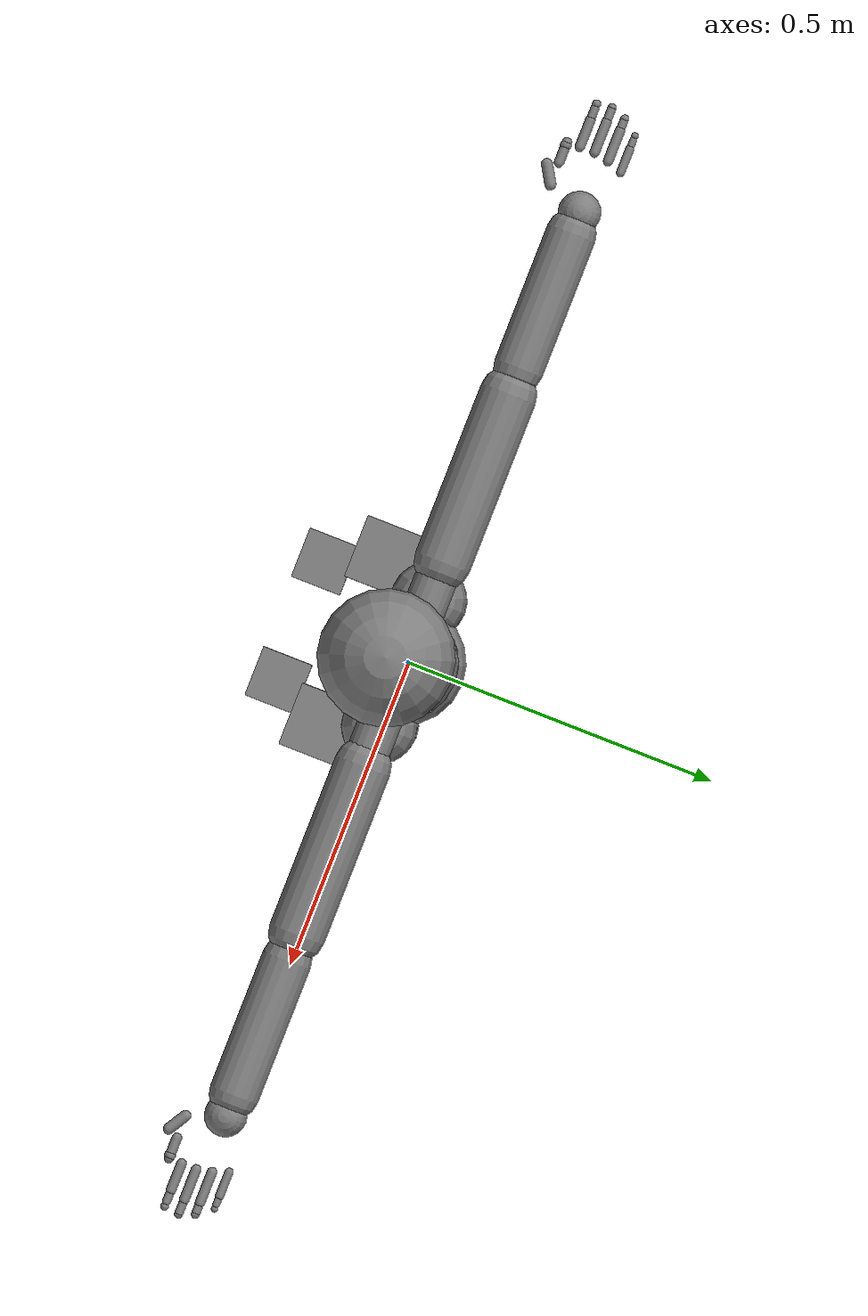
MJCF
<mujoco model="movinman">
  <compiler angle="radian"/>

  <default>
    <motor ctrlrange="-1 1" ctrllimited="true"/>
    <default class="body">
      <geom condim="1" friction="1.0 0.05 0.05" solimp=".9 .99 .003" solref=".015 1"/>
      <joint limited="true" solimplimit="0 .99 .01" armature=".01"/>
    </default>
    <default class="hand">
      <geom condim="1" friction="1.0 0.05 0.05" solimp=".9 .99 .003" solref=".015 1"/>
      <joint limited="true" solimplimit="0 .99 .01" armature=".005"/>
    </default>
  </default>

  <worldbody>
    <body name="Hips" pos="0 0 0.8698" childclass="body">
      <freejoint name="root"/>
      <geom name="Hips" type="sphere" size=".09" density="1000"/>

      <!-- Spine chain -->
      <body name="Spine" pos="0 0 0.0803">
        <joint name="Spine_x" type="hinge" axis="1 0 0" range="-3.14159 3.14159"/>
        <joint name="Spine_y" type="hinge" axis="0 1 0" range="-3.14159 3.14159"/>
        <joint name="Spine_z" type="hinge" axis="0 0 1" range="-3.14159 3.14159"/>
        <geom name="Spine" type="capsule" fromto="0 0 0 0 0 0.12" size=".07" density="1000"/>

        <body name="Spine1" pos="0 0 0.2169">
          <joint name="Spine1_x" type="hinge" axis="1 0 0" range="-3.14159 3.14159"/>
          <joint name="Spine1_y" type="hinge" axis="0 1 0" range="-3.14159 3.14159"/>
          <joint name="Spine1_z" type="hinge" axis="0 0 1" range="-3.14159 3.14159"/>
          <geom name="Spine1" type="capsule" fromto="0 0 0 0 0 0.13" size=".08" density="1000"/>

          <!-- Neck/Head -->
          <body name="Neck" pos="0 0 0.2365">
            <joint name="Neck_x" type="hinge" axis="1 0 0" range="-3.14159 3.14159"/>
            <joint name="Neck_y" type="hinge" axis="0 1 0" range="-3.14159 3.14159"/>
            <joint name="Neck_z" type="hinge" axis="0 0 1" range="-3.14159 3.14159"/>
            <geom name="Neck" type="capsule" fromto="0 0 0 0 0 0.08" size=".03" density="1000"/>

            <body name="Head" pos="0 -0.0196 0.1518">
              <joint name="Head_x" type="hinge" axis="1 0 0" range="-3.14159 3.14159"/>
              <joint name="Head_y" type="hinge" axis="0 1 0" range="-3.14159 3.14159"/>
              <joint name="Head_z" type="hinge" axis="0 0 1" range="-3.14159 3.14159"/>
              <geom name="Head" type="sphere" size=".095" density="1000"/>
            </body>
          </body>

          <!-- Left arm chain -->
          <body name="LeftShoulder" pos="0.0395 0.0029 0.1995">
            <joint name="LeftShoulder_x" type="hinge" axis="1 0 0" range="-3.14159 3.14159"/>
            <joint name="LeftShoulder_y" type="hinge" axis="0 1 0" range="-3.14159 3.14159"/>
            <joint name="LeftShoulder_z" type="hinge" axis="0 0 1" range="-3.14159 3.14159"/>
            <geom name="LeftShoulder" type="capsule" fromto="0 0 0 0.10 0 0" size=".03" density="1000"/>

            <body name="LeftArm" pos="0.1122 0 0">
              <joint name="LeftArm_x" type="hinge" axis="1 0 0" range="-3.14159 3.14159"/>
              <joint name="LeftArm_y" type="hinge" axis="0 1 0" range="-3.14159 3.14159"/>
              <joint name="LeftArm_z" type="hinge" axis="0 0 1" range="-3.14159 3.14159"/>
              <geom name="LeftArm" type="capsule" fromto="0 0 0 0.25 0 0" size=".04" density="1000"/>

              <body name="LeftForeArm" pos="0.2888 0 0">
                <joint name="LeftForeArm_x" type="hinge" axis="1 0 0" range="-3.14159 3.14159"/>
                <joint name="LeftForeArm_y" type="hinge" axis="0 1 0" range="-3.14159 3.14159"/>
                <joint name="LeftForeArm_z" type="hinge" axis="0 0 1" range="-3.14159 3.14159"/>
                <geom name="LeftForeArm" type="capsule" fromto="0 0 0 0.20 0 0" size=".035" density="1000"/>

                <body name="LeftHand" pos="0.2319 0 0">
                  <joint name="LeftHand_x" type="hinge" axis="1 0 0" range="-3.14159 3.14159"/>
                  <joint name="LeftHand_y" type="hinge" axis="0 1 0" range="-3.14159 3.14159"/>
                  <joint name="LeftHand_z" type="hinge" axis="0 0 1" range="-3.14159 3.14159"/>
                  <geom name="LeftHand" type="sphere" size=".03" density="1000"/>

                  <!-- Left hand fingers -->
                  <body name="LeftHandThumb1" pos="0.0206 -0.0517 -0.0001" childclass="hand">
                    <joint name="LeftHandThumb1_x" type="hinge" axis="1 0 0" range="-3.14159 3.14159"/>
                    <joint name="LeftHandThumb1_y" type="hinge" axis="0 1 0" range="-3.14159 3.14159"/>
                    <joint name="LeftHandThumb1_z" type="hinge" axis="0 0 1" range="-3.14159 3.14159"/>
                    <geom name="LeftHandThumb1" type="capsule" fromto="0 0 0 0.025 -0.015 0" size=".008" density="1000"/>
                    <body name="LeftHandThumb2" pos="0.0328 0 0">
                      <joint name="LeftHandThumb2_x" type="hinge" axis="1 0 0" range="-3.14159 3.14159"/>
                      <joint name="LeftHandThumb2_y" type="hinge" axis="0 1 0" range="-3.14159 3.14159"/>
                      <joint name="LeftHandThumb2_z" type="hinge" axis="0 0 1" range="-3.14159 3.14159"/>
                      <geom name="LeftHandThumb2" type="capsule" fromto="0 0 0 0.030 0 0" size=".007" density="1000"/>
                      <body name="LeftHandThumb3" pos="0.026 0 0">
                        <joint name="LeftHandThumb3_x" type="hinge" axis="1 0 0" range="-3.14159 3.14159"/>
                        <joint name="LeftHandThumb3_y" type="hinge" axis="0 1 0" range="-3.14159 3.14159"/>
                        <joint name="LeftHandThumb3_z" type="hinge" axis="0 0 1" range="-3.14159 3.14159"/>
                        <geom name="LeftHandThumb3" type="sphere" size=".008" density="1000"/>
                      </body>
                    </body>
                  </body>

                  <body name="LeftHandIndex1" pos="0.0843 -0.0328 0" childclass="hand">
                    <joint name="LeftHandIndex1_x" type="hinge" axis="1 0 0" range="-3.14159 3.14159"/>
                    <joint name="LeftHandIndex1_y" type="hinge" axis="0 1 0" range="-3.14159 3.14159"/>
                    <joint name="LeftHandIndex1_z" type="hinge" axis="0 0 1" range="-3.14159 3.14159"/>
                    <geom name="LeftHandIndex1" type="capsule" fromto="0 0 0 0.040 0 0" size=".007" density="1000"/>
                    <body name="LeftHandIndex2" pos="0.0372 0 0">
                      <joint name="LeftHandIndex2_x" type="hinge" axis="1 0 0" range="-3.14159 3.14159"/>
                      <joint name="LeftHandIndex2_y" type="hinge" axis="0 1 0" range="-3.14159 3.14159"/>
                      <joint name="LeftHandIndex2_z" type="hinge" axis="0 0 1" range="-3.14159 3.14159"/>
                      <geom name="LeftHandIndex2" type="capsule" fromto="0 0 0 0.020 0 0" size=".006" density="1000"/>
                      <body name="LeftHandIndex3" pos="0.0265 0 0">
                        <joint name="LeftHandIndex3_x" type="hinge" axis="1 0 0" range="-3.14159 3.14159"/>
                        <joint name="LeftHandIndex3_y" type="hinge" axis="0 1 0" range="-3.14159 3.14159"/>
                        <joint name="LeftHandIndex3_z" type="hinge" axis="0 0 1" range="-3.14159 3.14159"/>
                        <geom name="LeftHandIndex3" type="sphere" size=".006" density="1000"/>
                      </body>
                    </body>
                  </body>

                  <body name="LeftHandMiddle1" pos="0.0843 -0.0109 0" childclass="hand">
                    <joint name="LeftHandMiddle1_x" type="hinge" axis="1 0 0" range="-3.14159 3.14159"/>
                    <joint name="LeftHandMiddle1_y" type="hinge" axis="0 1 0" range="-3.14159 3.14159"/>
                    <joint name="LeftHandMiddle1_z" type="hinge" axis="0 0 1" range="-3.14159 3.14159"/>
                    <geom name="LeftHandMiddle1" type="capsule" fromto="0 0 0 0.046 0 0" size=".007" density="1000"/>
                    <body name="LeftHandMiddle2" pos="0.0414 0 0">
                      <joint name="LeftHandMiddle2_x" type="hinge" axis="1 0 0" range="-3.14159 3.14159"/>
                      <joint name="LeftHandMiddle2_y" type="hinge" axis="0 1 0" range="-3.14159 3.14159"/>
                      <joint name="LeftHandMiddle2_z" type="hinge" axis="0 0 1" range="-3.14159 3.14159"/>
                      <geom name="LeftHandMiddle2" type="capsule" fromto="0 0 0 0.025 0 0" size=".006" density="1000"/>
                      <body name="LeftHandMiddle3" pos="0.0252 0 0">
                        <joint name="LeftHandMiddle3_x" type="hinge" axis="1 0 0" range="-3.14159 3.14159"/>
                        <joint name="LeftHandMiddle3_y" type="hinge" axis="0 1 0" range="-3.14159 3.14159"/>
                        <joint name="LeftHandMiddle3_z" type="hinge" axis="0 0 1" range="-3.14159 3.14159"/>
                        <geom name="LeftHandMiddle3" type="sphere" size=".006" density="1000"/>
                      </body>
                    </body>
                  </body>

                  <body name="LeftHandRing1" pos="0.0799 0.0109 0" childclass="hand">
                    <joint name="LeftHandRing1_x" type="hinge" axis="1 0 0" range="-3.14159 3.14159"/>
                    <joint name="LeftHandRing1_y" type="hinge" axis="0 1 0" range="-3.14159 3.14159"/>
                    <joint name="LeftHandRing1_z" type="hinge" axis="0 0 1" range="-3.14159 3.14159"/>
                    <geom name="LeftHandRing1" type="capsule" fromto="0 0 0 0.046 0 0" size=".007" density="1000"/>
                    <body name="LeftHandRing2" pos="0.0374 0 0">
                      <joint name="LeftHandRing2_x" type="hinge" axis="1 0 0" range="-3.14159 3.14159"/>
                      <joint name="LeftHandRing2_y" type="hinge" axis="0 1 0" range="-3.14159 3.14159"/>
                      <joint name="LeftHandRing2_z" type="hinge" axis="0 0 1" range="-3.14159 3.14159"/>
                      <geom name="LeftHandRing2" type="capsule" fromto="0 0 0 0.023 0 0" size=".006" density="1000"/>
                      <body name="LeftHandRing3" pos="0.0255 0 0">
                        <joint name="LeftHandRing3_x" type="hinge" axis="1 0 0" range="-3.14159 3.14159"/>
                        <joint name="LeftHandRing3_y" type="hinge" axis="0 1 0" range="-3.14159 3.14159"/>
                        <joint name="LeftHandRing3_z" type="hinge" axis="0 0 1" range="-3.14159 3.14159"/>
                        <geom name="LeftHandRing3" type="sphere" size=".006" density="1000"/>
                      </body>
                    </body>
                  </body>

                  <body name="LeftHandPinky1" pos="0.0713 0.0328 0" childclass="hand">
                    <joint name="LeftHandPinky1_x" type="hinge" axis="1 0 0" range="-3.14159 3.14159"/>
                    <joint name="LeftHandPinky1_y" type="hinge" axis="0 1 0" range="-3.14159 3.14159"/>
                    <joint name="LeftHandPinky1_z" type="hinge" axis="0 0 1" range="-3.14159 3.14159"/>
                    <geom name="LeftHandPinky1" type="capsule" fromto="0 0 0 0.036 0 0" size=".006" density="1000"/>
                    <body name="LeftHandPinky2" pos="0.0309 0 0">
                      <joint name="LeftHandPinky2_x" type="hinge" axis="1 0 0" range="-3.14159 3.14159"/>
                      <joint name="LeftHandPinky2_y" type="hinge" axis="0 1 0" range="-3.14159 3.14159"/>
                      <joint name="LeftHandPinky2_z" type="hinge" axis="0 0 1" range="-3.14159 3.14159"/>
                      <geom name="LeftHandPinky2" type="capsule" fromto="0 0 0 0.018 0 0" size=".005" density="1000"/>
                      <body name="LeftHandPinky3" pos="0.0239 0 0">
                        <joint name="LeftHandPinky3_x" type="hinge" axis="1 0 0" range="-3.14159 3.14159"/>
                        <joint name="LeftHandPinky3_y" type="hinge" axis="0 1 0" range="-3.14159 3.14159"/>
                        <joint name="LeftHandPinky3_z" type="hinge" axis="0 0 1" range="-3.14159 3.14159"/>
                        <geom name="LeftHandPinky3" type="sphere" size=".005" density="1000"/>
                      </body>
                    </body>
                  </body>
                </body>
              </body>
            </body>
          </body>

          <!-- Right arm chain -->
          <body name="RightShoulder" pos="-0.0388 0.0029 0.1995">
            <joint name="RightShoulder_x" type="hinge" axis="1 0 0" range="-3.14159 3.14159"/>
            <joint name="RightShoulder_y" type="hinge" axis="0 1 0" range="-3.14159 3.14159"/>
            <joint name="RightShoulder_z" type="hinge" axis="0 0 1" range="-3.14159 3.14159"/>
            <geom name="RightShoulder" type="capsule" fromto="0 0 0 -0.10 0 0" size=".03" density="1000"/>

            <body name="RightArm" pos="-0.1122 0 0">
              <joint name="RightArm_x" type="hinge" axis="1 0 0" range="-3.14159 3.14159"/>
              <joint name="RightArm_y" type="hinge" axis="0 1 0" range="-3.14159 3.14159"/>
              <joint name="RightArm_z" type="hinge" axis="0 0 1" range="-3.14159 3.14159"/>
              <geom name="RightArm" type="capsule" fromto="0 0 0 -0.25 0 0" size=".04" density="1000"/>

              <body name="RightForeArm" pos="-0.2888 0 0">
                <joint name="RightForeArm_x" type="hinge" axis="1 0 0" range="-3.14159 3.14159"/>
                <joint name="RightForeArm_y" type="hinge" axis="0 1 0" range="-3.14159 3.14159"/>
                <joint name="RightForeArm_z" type="hinge" axis="0 0 1" range="-3.14159 3.14159"/>
                <geom name="RightForeArm" type="capsule" fromto="0 0 0 -0.20 0 0" size=".035" density="1000"/>

                <body name="RightHand" pos="-0.2319 0 0">
                  <joint name="RightHand_x" type="hinge" axis="1 0 0" range="-3.14159 3.14159"/>
                  <joint name="RightHand_y" type="hinge" axis="0 1 0" range="-3.14159 3.14159"/>
                  <joint name="RightHand_z" type="hinge" axis="0 0 1" range="-3.14159 3.14159"/>
                  <geom name="RightHand" type="sphere" size=".03" density="1000"/>

                  <!-- Right hand fingers -->
                  <body name="RightHandThumb1" pos="-0.0214 -0.0517 -0.0001" childclass="hand">
                    <joint name="RightHandThumb1_x" type="hinge" axis="1 0 0" range="-3.14159 3.14159"/>
                    <joint name="RightHandThumb1_y" type="hinge" axis="0 1 0" range="-3.14159 3.14159"/>
                    <joint name="RightHandThumb1_z" type="hinge" axis="0 0 1" range="-3.14159 3.14159"/>
                    <geom name="RightHandThumb1" type="capsule" fromto="0 0 0 -0.025 -0.015 0" size=".008" density="1000"/>
                    <body name="RightHandThumb2" pos="-0.0328 0 0">
                      <joint name="RightHandThumb2_x" type="hinge" axis="1 0 0" range="-3.14159 3.14159"/>
                      <joint name="RightHandThumb2_y" type="hinge" axis="0 1 0" range="-3.14159 3.14159"/>
                      <joint name="RightHandThumb2_z" type="hinge" axis="0 0 1" range="-3.14159 3.14159"/>
                      <geom name="RightHandThumb2" type="capsule" fromto="0 0 0 -0.030 0 0" size=".007" density="1000"/>
                      <body name="RightHandThumb3" pos="-0.026 0 0">
                        <joint name="RightHandThumb3_x" type="hinge" axis="1 0 0" range="-3.14159 3.14159"/>
                        <joint name="RightHandThumb3_y" type="hinge" axis="0 1 0" range="-3.14159 3.14159"/>
                        <joint name="RightHandThumb3_z" type="hinge" axis="0 0 1" range="-3.14159 3.14159"/>
                        <geom name="RightHandThumb3" type="sphere" size=".008" density="1000"/>
                      </body>
                    </body>
                  </body>

                  <body name="RightHandIndex1" pos="-0.085 -0.0328 0" childclass="hand">
                    <joint name="RightHandIndex1_x" type="hinge" axis="1 0 0" range="-3.14159 3.14159"/>
                    <joint name="RightHandIndex1_y" type="hinge" axis="0 1 0" range="-3.14159 3.14159"/>
                    <joint name="RightHandIndex1_z" type="hinge" axis="0 0 1" range="-3.14159 3.14159"/>
                    <geom name="RightHandIndex1" type="capsule" fromto="0 0 0 -0.040 0 0" size=".007" density="1000"/>
                    <body name="RightHandIndex2" pos="-0.0372 0 0">
                      <joint name="RightHandIndex2_x" type="hinge" axis="1 0 0" range="-3.14159 3.14159"/>
                      <joint name="RightHandIndex2_y" type="hinge" axis="0 1 0" range="-3.14159 3.14159"/>
                      <joint name="RightHandIndex2_z" type="hinge" axis="0 0 1" range="-3.14159 3.14159"/>
                      <geom name="RightHandIndex2" type="capsule" fromto="0 0 0 -0.020 0 0" size=".006" density="1000"/>
                      <body name="RightHandIndex3" pos="-0.0265 0 0">
                        <joint name="RightHandIndex3_x" type="hinge" axis="1 0 0" range="-3.14159 3.14159"/>
                        <joint name="RightHandIndex3_y" type="hinge" axis="0 1 0" range="-3.14159 3.14159"/>
                        <joint name="RightHandIndex3_z" type="hinge" axis="0 0 1" range="-3.14159 3.14159"/>
                        <geom name="RightHandIndex3" type="sphere" size=".006" density="1000"/>
                      </body>
                    </body>
                  </body>

                  <body name="RightHandMiddle1" pos="-0.085 -0.0109 0" childclass="hand">
                    <joint name="RightHandMiddle1_x" type="hinge" axis="1 0 0" range="-3.14159 3.14159"/>
                    <joint name="RightHandMiddle1_y" type="hinge" axis="0 1 0" range="-3.14159 3.14159"/>
                    <joint name="RightHandMiddle1_z" type="hinge" axis="0 0 1" range="-3.14159 3.14159"/>
                    <geom name="RightHandMiddle1" type="capsule" fromto="0 0 0 -0.046 0 0" size=".007" density="1000"/>
                    <body name="RightHandMiddle2" pos="-0.0414 0 0">
                      <joint name="RightHandMiddle2_x" type="hinge" axis="1 0 0" range="-3.14159 3.14159"/>
                      <joint name="RightHandMiddle2_y" type="hinge" axis="0 1 0" range="-3.14159 3.14159"/>
                      <joint name="RightHandMiddle2_z" type="hinge" axis="0 0 1" range="-3.14159 3.14159"/>
                      <geom name="RightHandMiddle2" type="capsule" fromto="0 0 0 -0.025 0 0" size=".006" density="1000"/>
                      <body name="RightHandMiddle3" pos="-0.0252 0 0">
                        <joint name="RightHandMiddle3_x" type="hinge" axis="1 0 0" range="-3.14159 3.14159"/>
                        <joint name="RightHandMiddle3_y" type="hinge" axis="0 1 0" range="-3.14159 3.14159"/>
                        <joint name="RightHandMiddle3_z" type="hinge" axis="0 0 1" range="-3.14159 3.14159"/>
                        <geom name="RightHandMiddle3" type="sphere" size=".006" density="1000"/>
                      </body>
                    </body>
                  </body>

                  <body name="RightHandRing1" pos="-0.0807 0.0109 0" childclass="hand">
                    <joint name="RightHandRing1_x" type="hinge" axis="1 0 0" range="-3.14159 3.14159"/>
                    <joint name="RightHandRing1_y" type="hinge" axis="0 1 0" range="-3.14159 3.14159"/>
                    <joint name="RightHandRing1_z" type="hinge" axis="0 0 1" range="-3.14159 3.14159"/>
                    <geom name="RightHandRing1" type="capsule" fromto="0 0 0 -0.046 0 0" size=".007" density="1000"/>
                    <body name="RightHandRing2" pos="-0.0374 0 0">
                      <joint name="RightHandRing2_x" type="hinge" axis="1 0 0" range="-3.14159 3.14159"/>
                      <joint name="RightHandRing2_y" type="hinge" axis="0 1 0" range="-3.14159 3.14159"/>
                      <joint name="RightHandRing2_z" type="hinge" axis="0 0 1" range="-3.14159 3.14159"/>
                      <geom name="RightHandRing2" type="capsule" fromto="0 0 0 -0.023 0 0" size=".006" density="1000"/>
                      <body name="RightHandRing3" pos="-0.0255 0 0">
                        <joint name="RightHandRing3_x" type="hinge" axis="1 0 0" range="-3.14159 3.14159"/>
                        <joint name="RightHandRing3_y" type="hinge" axis="0 1 0" range="-3.14159 3.14159"/>
                        <joint name="RightHandRing3_z" type="hinge" axis="0 0 1" range="-3.14159 3.14159"/>
                        <geom name="RightHandRing3" type="sphere" size=".006" density="1000"/>
                      </body>
                    </body>
                  </body>

                  <body name="RightHandPinky1" pos="-0.072 0.0328 0" childclass="hand">
                    <joint name="RightHandPinky1_x" type="hinge" axis="1 0 0" range="-3.14159 3.14159"/>
                    <joint name="RightHandPinky1_y" type="hinge" axis="0 1 0" range="-3.14159 3.14159"/>
                    <joint name="RightHandPinky1_z" type="hinge" axis="0 0 1" range="-3.14159 3.14159"/>
                    <geom name="RightHandPinky1" type="capsule" fromto="0 0 0 -0.036 0 0" size=".006" density="1000"/>
                    <body name="RightHandPinky2" pos="-0.0309 0 0">
                      <joint name="RightHandPinky2_x" type="hinge" axis="1 0 0" range="-3.14159 3.14159"/>
                      <joint name="RightHandPinky2_y" type="hinge" axis="0 1 0" range="-3.14159 3.14159"/>
                      <joint name="RightHandPinky2_z" type="hinge" axis="0 0 1" range="-3.14159 3.14159"/>
                      <geom name="RightHandPinky2" type="capsule" fromto="0 0 0 -0.018 0 0" size=".005" density="1000"/>
                      <body name="RightHandPinky3" pos="-0.0239 0 0">
                        <joint name="RightHandPinky3_x" type="hinge" axis="1 0 0" range="-3.14159 3.14159"/>
                        <joint name="RightHandPinky3_y" type="hinge" axis="0 1 0" range="-3.14159 3.14159"/>
                        <joint name="RightHandPinky3_z" type="hinge" axis="0 0 1" range="-3.14159 3.14159"/>
                        <geom name="RightHandPinky3" type="sphere" size=".005" density="1000"/>
                      </body>
                    </body>
                  </body>
                </body>
              </body>
            </body>
          </body>
        </body>
      </body>

      <!-- Left leg chain -->
      <body name="LeftUpLeg" pos="0.0979 0 0">
        <joint name="LeftUpLeg_x" type="hinge" axis="1 0 0" range="-3.14159 3.14159"/>
        <joint name="LeftUpLeg_y" type="hinge" axis="0 1 0" range="-3.14159 3.14159"/>
        <joint name="LeftUpLeg_z" type="hinge" axis="0 0 1" range="-3.14159 3.14159"/>
        <geom name="LeftUpLeg" type="capsule" fromto="0 0 0 0 0 -0.32" size=".055" density="1000"/>

        <body name="LeftLeg" pos="0 0 -0.3801">
          <joint name="LeftLeg_x" type="hinge" axis="1 0 0" range="-3.14159 3.14159"/>
          <joint name="LeftLeg_y" type="hinge" axis="0 1 0" range="-3.14159 3.14159"/>
          <joint name="LeftLeg_z" type="hinge" axis="0 0 1" range="-3.14159 3.14159"/>
          <geom name="LeftLeg" type="capsule" fromto="0 0 0 0 0 -0.36" size=".05" density="1000"/>

          <body name="LeftFoot" pos="0 0 -0.4124">
            <joint name="LeftFoot_x" type="hinge" axis="1 0 0" range="-3.14159 3.14159"/>
            <joint name="LeftFoot_y" type="hinge" axis="0 1 0" range="-3.14159 3.14159"/>
            <joint name="LeftFoot_z" type="hinge" axis="0 0 1" range="-3.14159 3.14159"/>
            <geom name="LeftFoot" type="box" pos="0.04 -0.06 -0.02" size="0.05 0.08 0.025" density="1000"/>

            <body name="LeftToeBase" pos="0 -0.1469 -0.0637">
              <joint name="LeftToeBase_x" type="hinge" axis="1 0 0" range="-3.14159 3.14159"/>
              <joint name="LeftToeBase_y" type="hinge" axis="0 1 0" range="-3.14159 3.14159"/>
              <joint name="LeftToeBase_z" type="hinge" axis="0 0 1" range="-3.14159 3.14159"/>
              <geom name="LeftToeBase" type="box" pos="0 -0.03 0" size="0.04 0.04 0.015" density="1000"/>
            </body>
          </body>
        </body>
      </body>

      <!-- Right leg chain -->
      <body name="RightUpLeg" pos="-0.0979 0 0">
        <joint name="RightUpLeg_x" type="hinge" axis="1 0 0" range="-3.14159 3.14159"/>
        <joint name="RightUpLeg_y" type="hinge" axis="0 1 0" range="-3.14159 3.14159"/>
        <joint name="RightUpLeg_z" type="hinge" axis="0 0 1" range="-3.14159 3.14159"/>
        <geom name="RightUpLeg" type="capsule" fromto="0 0 0 0 0 -0.32" size=".055" density="1000"/>

        <body name="RightLeg" pos="0 0 -0.3801">
          <joint name="RightLeg_x" type="hinge" axis="1 0 0" range="-3.14159 3.14159"/>
          <joint name="RightLeg_y" type="hinge" axis="0 1 0" range="-3.14159 3.14159"/>
          <joint name="RightLeg_z" type="hinge" axis="0 0 1" range="-3.14159 3.14159"/>
          <geom name="RightLeg" type="capsule" fromto="0 0 0 0 0 -0.36" size=".05" density="1000"/>

          <body name="RightFoot" pos="0 0 -0.4124">
            <joint name="RightFoot_x" type="hinge" axis="1 0 0" range="-3.14159 3.14159"/>
            <joint name="RightFoot_y" type="hinge" axis="0 1 0" range="-3.14159 3.14159"/>
            <joint name="RightFoot_z" type="hinge" axis="0 0 1" range="-3.14159 3.14159"/>
            <geom name="RightFoot" type="box" pos="-0.04 -0.06 -0.02" size="0.05 0.08 0.025" density="1000"/>

            <body name="RightToeBase" pos="0 -0.1469 -0.0637">
              <joint name="RightToeBase_x" type="hinge" axis="1 0 0" range="-3.14159 3.14159"/>
              <joint name="RightToeBase_y" type="hinge" axis="0 1 0" range="-3.14159 3.14159"/>
              <joint name="RightToeBase_z" type="hinge" axis="0 0 1" range="-3.14159 3.14159"/>
              <geom name="RightToeBase" type="box" pos="0 -0.03 0" size="0.04 0.04 0.015" density="1000"/>
            </body>
          </body>
        </body>
      </body>
    </body>
  </worldbody>

  <actuator>
    <motor name="Spine_x" gear="200" joint="Spine_x"/>
    <motor name="Spine_y" gear="200" joint="Spine_y"/>
    <motor name="Spine_z" gear="200" joint="Spine_z"/>
    <motor name="Spine1_x" gear="200" joint="Spine1_x"/>
    <motor name="Spine1_y" gear="200" joint="Spine1_y"/>
    <motor name="Spine1_z" gear="200" joint="Spine1_z"/>
    <motor name="Neck_x" gear="50" joint="Neck_x"/>
    <motor name="Neck_y" gear="50" joint="Neck_y"/>
    <motor name="Neck_z" gear="50" joint="Neck_z"/>
    <motor name="Head_x" gear="50" joint="Head_x"/>
    <motor name="Head_y" gear="50" joint="Head_y"/>
    <motor name="Head_z" gear="50" joint="Head_z"/>
    <motor name="LeftShoulder_x" gear="100" joint="LeftShoulder_x"/>
    <motor name="LeftShoulder_y" gear="100" joint="LeftShoulder_y"/>
    <motor name="LeftShoulder_z" gear="100" joint="LeftShoulder_z"/>
    <motor name="LeftArm_x" gear="100" joint="LeftArm_x"/>
    <motor name="LeftArm_y" gear="100" joint="LeftArm_y"/>
    <motor name="LeftArm_z" gear="100" joint="LeftArm_z"/>
    <motor name="LeftForeArm_x" gear="70" joint="LeftForeArm_x"/>
    <motor name="LeftForeArm_y" gear="70" joint="LeftForeArm_y"/>
    <motor name="LeftForeArm_z" gear="70" joint="LeftForeArm_z"/>
    <motor name="LeftHand_x" gear="50" joint="LeftHand_x"/>
    <motor name="LeftHand_y" gear="50" joint="LeftHand_y"/>
    <motor name="LeftHand_z" gear="50" joint="LeftHand_z"/>
    <motor name="LeftHandThumb1_x" gear="10" joint="LeftHandThumb1_x"/>
    <motor name="LeftHandThumb1_y" gear="10" joint="LeftHandThumb1_y"/>
    <motor name="LeftHandThumb1_z" gear="10" joint="LeftHandThumb1_z"/>
    <motor name="LeftHandThumb2_x" gear="10" joint="LeftHandThumb2_x"/>
    <motor name="LeftHandThumb2_y" gear="10" joint="LeftHandThumb2_y"/>
    <motor name="LeftHandThumb2_z" gear="10" joint="LeftHandThumb2_z"/>
    <motor name="LeftHandThumb3_x" gear="10" joint="LeftHandThumb3_x"/>
    <motor name="LeftHandThumb3_y" gear="10" joint="LeftHandThumb3_y"/>
    <motor name="LeftHandThumb3_z" gear="10" joint="LeftHandThumb3_z"/>
    <motor name="LeftHandIndex1_x" gear="10" joint="LeftHandIndex1_x"/>
    <motor name="LeftHandIndex1_y" gear="10" joint="LeftHandIndex1_y"/>
    <motor name="LeftHandIndex1_z" gear="10" joint="LeftHandIndex1_z"/>
    <motor name="LeftHandIndex2_x" gear="10" joint="LeftHandIndex2_x"/>
    <motor name="LeftHandIndex2_y" gear="10" joint="LeftHandIndex2_y"/>
    <motor name="LeftHandIndex2_z" gear="10" joint="LeftHandIndex2_z"/>
    <motor name="LeftHandIndex3_x" gear="10" joint="LeftHandIndex3_x"/>
    <motor name="LeftHandIndex3_y" gear="10" joint="LeftHandIndex3_y"/>
    <motor name="LeftHandIndex3_z" gear="10" joint="LeftHandIndex3_z"/>
    <motor name="LeftHandMiddle1_x" gear="10" joint="LeftHandMiddle1_x"/>
    <motor name="LeftHandMiddle1_y" gear="10" joint="LeftHandMiddle1_y"/>
    <motor name="LeftHandMiddle1_z" gear="10" joint="LeftHandMiddle1_z"/>
    <motor name="LeftHandMiddle2_x" gear="10" joint="LeftHandMiddle2_x"/>
    <motor name="LeftHandMiddle2_y" gear="10" joint="LeftHandMiddle2_y"/>
    <motor name="LeftHandMiddle2_z" gear="10" joint="LeftHandMiddle2_z"/>
    <motor name="LeftHandMiddle3_x" gear="10" joint="LeftHandMiddle3_x"/>
    <motor name="LeftHandMiddle3_y" gear="10" joint="LeftHandMiddle3_y"/>
    <motor name="LeftHandMiddle3_z" gear="10" joint="LeftHandMiddle3_z"/>
    <motor name="LeftHandRing1_x" gear="10" joint="LeftHandRing1_x"/>
    <motor name="LeftHandRing1_y" gear="10" joint="LeftHandRing1_y"/>
    <motor name="LeftHandRing1_z" gear="10" joint="LeftHandRing1_z"/>
    <motor name="LeftHandRing2_x" gear="10" joint="LeftHandRing2_x"/>
    <motor name="LeftHandRing2_y" gear="10" joint="LeftHandRing2_y"/>
    <motor name="LeftHandRing2_z" gear="10" joint="LeftHandRing2_z"/>
    <motor name="LeftHandRing3_x" gear="10" joint="LeftHandRing3_x"/>
    <motor name="LeftHandRing3_y" gear="10" joint="LeftHandRing3_y"/>
    <motor name="LeftHandRing3_z" gear="10" joint="LeftHandRing3_z"/>
    <motor name="LeftHandPinky1_x" gear="10" joint="LeftHandPinky1_x"/>
    <motor name="LeftHandPinky1_y" gear="10" joint="LeftHandPinky1_y"/>
    <motor name="LeftHandPinky1_z" gear="10" joint="LeftHandPinky1_z"/>
    <motor name="LeftHandPinky2_x" gear="10" joint="LeftHandPinky2_x"/>
    <motor name="LeftHandPinky2_y" gear="10" joint="LeftHandPinky2_y"/>
    <motor name="LeftHandPinky2_z" gear="10" joint="LeftHandPinky2_z"/>
    <motor name="LeftHandPinky3_x" gear="10" joint="LeftHandPinky3_x"/>
    <motor name="LeftHandPinky3_y" gear="10" joint="LeftHandPinky3_y"/>
    <motor name="LeftHandPinky3_z" gear="10" joint="LeftHandPinky3_z"/>
    <motor name="RightShoulder_x" gear="100" joint="RightShoulder_x"/>
    <motor name="RightShoulder_y" gear="100" joint="RightShoulder_y"/>
    <motor name="RightShoulder_z" gear="100" joint="RightShoulder_z"/>
    <motor name="RightArm_x" gear="100" joint="RightArm_x"/>
    <motor name="RightArm_y" gear="100" joint="RightArm_y"/>
    <motor name="RightArm_z" gear="100" joint="RightArm_z"/>
    <motor name="RightForeArm_x" gear="70" joint="RightForeArm_x"/>
    <motor name="RightForeArm_y" gear="70" joint="RightForeArm_y"/>
    <motor name="RightForeArm_z" gear="70" joint="RightForeArm_z"/>
    <motor name="RightHand_x" gear="50" joint="RightHand_x"/>
    <motor name="RightHand_y" gear="50" joint="RightHand_y"/>
    <motor name="RightHand_z" gear="50" joint="RightHand_z"/>
    <motor name="RightHandThumb1_x" gear="10" joint="RightHandThumb1_x"/>
    <motor name="RightHandThumb1_y" gear="10" joint="RightHandThumb1_y"/>
    <motor name="RightHandThumb1_z" gear="10" joint="RightHandThumb1_z"/>
    <motor name="RightHandThumb2_x" gear="10" joint="RightHandThumb2_x"/>
    <motor name="RightHandThumb2_y" gear="10" joint="RightHandThumb2_y"/>
    <motor name="RightHandThumb2_z" gear="10" joint="RightHandThumb2_z"/>
    <motor name="RightHandThumb3_x" gear="10" joint="RightHandThumb3_x"/>
    <motor name="RightHandThumb3_y" gear="10" joint="RightHandThumb3_y"/>
    <motor name="RightHandThumb3_z" gear="10" joint="RightHandThumb3_z"/>
    <motor name="RightHandIndex1_x" gear="10" joint="RightHandIndex1_x"/>
    <motor name="RightHandIndex1_y" gear="10" joint="RightHandIndex1_y"/>
    <motor name="RightHandIndex1_z" gear="10" joint="RightHandIndex1_z"/>
    <motor name="RightHandIndex2_x" gear="10" joint="RightHandIndex2_x"/>
    <motor name="RightHandIndex2_y" gear="10" joint="RightHandIndex2_y"/>
    <motor name="RightHandIndex2_z" gear="10" joint="RightHandIndex2_z"/>
    <motor name="RightHandIndex3_x" gear="10" joint="RightHandIndex3_x"/>
    <motor name="RightHandIndex3_y" gear="10" joint="RightHandIndex3_y"/>
    <motor name="RightHandIndex3_z" gear="10" joint="RightHandIndex3_z"/>
    <motor name="RightHandMiddle1_x" gear="10" joint="RightHandMiddle1_x"/>
    <motor name="RightHandMiddle1_y" gear="10" joint="RightHandMiddle1_y"/>
    <motor name="RightHandMiddle1_z" gear="10" joint="RightHandMiddle1_z"/>
    <motor name="RightHandMiddle2_x" gear="10" joint="RightHandMiddle2_x"/>
    <motor name="RightHandMiddle2_y" gear="10" joint="RightHandMiddle2_y"/>
    <motor name="RightHandMiddle2_z" gear="10" joint="RightHandMiddle2_z"/>
    <motor name="RightHandMiddle3_x" gear="10" joint="RightHandMiddle3_x"/>
    <motor name="RightHandMiddle3_y" gear="10" joint="RightHandMiddle3_y"/>
    <motor name="RightHandMiddle3_z" gear="10" joint="RightHandMiddle3_z"/>
    <motor name="RightHandRing1_x" gear="10" joint="RightHandRing1_x"/>
    <motor name="RightHandRing1_y" gear="10" joint="RightHandRing1_y"/>
    <motor name="RightHandRing1_z" gear="10" joint="RightHandRing1_z"/>
    <motor name="RightHandRing2_x" gear="10" joint="RightHandRing2_x"/>
    <motor name="RightHandRing2_y" gear="10" joint="RightHandRing2_y"/>
    <motor name="RightHandRing2_z" gear="10" joint="RightHandRing2_z"/>
    <motor name="RightHandRing3_x" gear="10" joint="RightHandRing3_x"/>
    <motor name="RightHandRing3_y" gear="10" joint="RightHandRing3_y"/>
    <motor name="RightHandRing3_z" gear="10" joint="RightHandRing3_z"/>
    <motor name="RightHandPinky1_x" gear="10" joint="RightHandPinky1_x"/>
    <motor name="RightHandPinky1_y" gear="10" joint="RightHandPinky1_y"/>
    <motor name="RightHandPinky1_z" gear="10" joint="RightHandPinky1_z"/>
    <motor name="RightHandPinky2_x" gear="10" joint="RightHandPinky2_x"/>
    <motor name="RightHandPinky2_y" gear="10" joint="RightHandPinky2_y"/>
    <motor name="RightHandPinky2_z" gear="10" joint="RightHandPinky2_z"/>
    <motor name="RightHandPinky3_x" gear="10" joint="RightHandPinky3_x"/>
    <motor name="RightHandPinky3_y" gear="10" joint="RightHandPinky3_y"/>
    <motor name="RightHandPinky3_z" gear="10" joint="RightHandPinky3_z"/>
    <motor name="LeftUpLeg_x" gear="200" joint="LeftUpLeg_x"/>
    <motor name="LeftUpLeg_y" gear="200" joint="LeftUpLeg_y"/>
    <motor name="LeftUpLeg_z" gear="200" joint="LeftUpLeg_z"/>
    <motor name="LeftLeg_x" gear="150" joint="LeftLeg_x"/>
    <motor name="LeftLeg_y" gear="150" joint="LeftLeg_y"/>
    <motor name="LeftLeg_z" gear="150" joint="LeftLeg_z"/>
    <motor name="LeftFoot_x" gear="90" joint="LeftFoot_x"/>
    <motor name="LeftFoot_y" gear="90" joint="LeftFoot_y"/>
    <motor name="LeftFoot_z" gear="90" joint="LeftFoot_z"/>
    <motor name="LeftToeBase_x" gear="50" joint="LeftToeBase_x"/>
    <motor name="LeftToeBase_y" gear="50" joint="LeftToeBase_y"/>
    <motor name="LeftToeBase_z" gear="50" joint="LeftToeBase_z"/>
    <motor name="RightUpLeg_x" gear="200" joint="RightUpLeg_x"/>
    <motor name="RightUpLeg_y" gear="200" joint="RightUpLeg_y"/>
    <motor name="RightUpLeg_z" gear="200" joint="RightUpLeg_z"/>
    <motor name="RightLeg_x" gear="150" joint="RightLeg_x"/>
    <motor name="RightLeg_y" gear="150" joint="RightLeg_y"/>
    <motor name="RightLeg_z" gear="150" joint="RightLeg_z"/>
    <motor name="RightFoot_x" gear="90" joint="RightFoot_x"/>
    <motor name="RightFoot_y" gear="90" joint="RightFoot_y"/>
    <motor name="RightFoot_z" gear="90" joint="RightFoot_z"/>
    <motor name="RightToeBase_x" gear="50" joint="RightToeBase_x"/>
    <motor name="RightToeBase_y" gear="50" joint="RightToeBase_y"/>
    <motor name="RightToeBase_z" gear="50" joint="RightToeBase_z"/>
  </actuator>
</mujoco>
